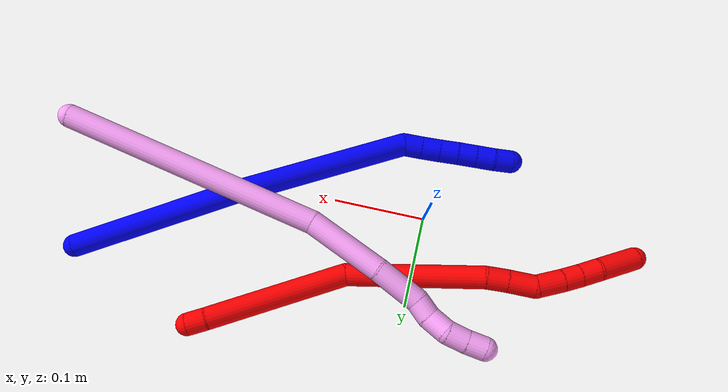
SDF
<sdf version="1.7">
 <world name="default">
  <model name="1">
   <static>0</static>
   <link name="1">
    <collision name="collision-cylinder-e_1_1_4">
     <pose>-0.08236 -0.040824 0.022036 1.07584 -1.05781 -0.67101</pose>
     <geometry><cylinder><radius>0.0125</radius><length>0.189054</length></cylinder></geometry>
     <surface>
      <friction><ode><mu>1.16</mu><mu2>1.16</mu2><slip1>0</slip1><slip2>0</slip2></ode></friction>
      <contact><ode><kp>1e+06</kp><kd>1</kd><max_vel>0</max_vel><min_depth>0.001</min_depth></ode></contact>
     </surface>
    </collision>
    <visual name="visual-cylinder-e_1_1_4">
     <pose>-0.08236 -0.040824 0.022036 1.07584 -1.05781 -0.67101</pose>
     <geometry><cylinder><radius>0.0125</radius><length>0.189054</length></cylinder></geometry>
     <material><ambient>0 0 1 1</ambient></material>
    </visual>
    <collision name="collision-cylinder-e_2_4_5">
     <pose>-0.246485 -0.130541 0.042995 1.5928 -1.03177 -1.05076</pose>
     <geometry><cylinder><radius>0.0125</radius><length>0.190548</length></cylinder></geometry>
     <surface>
      <friction><ode><mu>1.16</mu><mu2>1.16</mu2><slip1>0</slip1><slip2>0</slip2></ode></friction>
      <contact><ode><kp>1e+06</kp><kd>1</kd><max_vel>0</max_vel><min_depth>0.001</min_depth></ode></contact>
     </surface>
    </collision>
    <visual name="visual-cylinder-e_2_4_5">
     <pose>-0.246485 -0.130541 0.042995 1.5928 -1.03177 -1.05076</pose>
     <geometry><cylinder><radius>0.0125</radius><length>0.190548</length></cylinder></geometry>
     <material><ambient>0 0 1 1</ambient></material>
    </visual>
    <collision name="collision-cylinder-e_3_5_6">
     <pose>-0.338211 -0.179946 0.041197 2.52395 -1.48214 -2.47065</pose>
     <geometry><cylinder><radius>0.0125</radius><length>0.02</length></cylinder></geometry>
     <surface>
      <friction><ode><mu>1.16</mu><mu2>1.16</mu2><slip1>0</slip1><slip2>0</slip2></ode></friction>
      <contact><ode><kp>1e+06</kp><kd>1</kd><max_vel>0</max_vel><min_depth>0.001</min_depth></ode></contact>
     </surface>
    </collision>
    <visual name="visual-cylinder-e_3_5_6">
     <pose>-0.338211 -0.179946 0.041197 2.52395 -1.48214 -2.47065</pose>
     <geometry><cylinder><radius>0.0125</radius><length>0.02</length></cylinder></geometry>
     <material><ambient>0 0 1 1</ambient></material>
    </visual>
    <collision name="collision-cylinder-e_4_6_7">
     <pose>-0.358248 -0.181055 0.040085 2.15082 -1.50027 -2.09065</pose>
     <geometry><cylinder><radius>0.0125</radius><length>0.020202</length></cylinder></geometry>
     <surface>
      <friction><ode><mu>1.16</mu><mu2>1.16</mu2><slip1>0</slip1><slip2>0</slip2></ode></friction>
      <contact><ode><kp>1e+06</kp><kd>1</kd><max_vel>0</max_vel><min_depth>0.001</min_depth></ode></contact>
     </surface>
    </collision>
    <visual name="visual-cylinder-e_4_6_7">
     <pose>-0.358248 -0.181055 0.040085 2.15082 -1.50027 -2.09065</pose>
     <geometry><cylinder><radius>0.0125</radius><length>0.020202</length></cylinder></geometry>
     <material><ambient>0 0 1 1</ambient></material>
    </visual>
    <collision name="collision-cylinder-e_5_7_8">
     <pose>-0.378349 -0.182355 0.039443 1.91376 -1.49627 -1.84268</pose>
     <geometry><cylinder><radius>0.0125</radius><length>0.020106</length></cylinder></geometry>
     <surface>
      <friction><ode><mu>1.16</mu><mu2>1.16</mu2><slip1>0</slip1><slip2>0</slip2></ode></friction>
      <contact><ode><kp>1e+06</kp><kd>1</kd><max_vel>0</max_vel><min_depth>0.001</min_depth></ode></contact>
     </surface>
    </collision>
    <visual name="visual-cylinder-e_5_7_8">
     <pose>-0.378349 -0.182355 0.039443 1.91376 -1.49627 -1.84268</pose>
     <geometry><cylinder><radius>0.0125</radius><length>0.020106</length></cylinder></geometry>
     <material><ambient>0 0 1 1</ambient></material>
    </visual>
    <collision name="collision-cylinder-e_6_8_9">
     <pose>-0.398369 -0.183689 0.03863 2.29944 -1.48655 -2.23475</pose>
     <geometry><cylinder><radius>0.0125</radius><length>0.02006</length></cylinder></geometry>
     <surface>
      <friction><ode><mu>1.16</mu><mu2>1.16</mu2><slip1>0</slip1><slip2>0</slip2></ode></friction>
      <contact><ode><kp>1e+06</kp><kd>1</kd><max_vel>0</max_vel><min_depth>0.001</min_depth></ode></contact>
     </surface>
    </collision>
    <visual name="visual-cylinder-e_6_8_9">
     <pose>-0.398369 -0.183689 0.03863 2.29944 -1.48655 -2.23475</pose>
     <geometry><cylinder><radius>0.0125</radius><length>0.02006</length></cylinder></geometry>
     <material><ambient>0 0 1 1</ambient></material>
    </visual>
    <collision name="collision-cylinder-e_7_9_10">
     <pose>-0.418336 -0.184914 0.037489 2.34265 -1.48773 -2.28133</pose>
     <geometry><cylinder><radius>0.0125</radius><length>0.020014</length></cylinder></geometry>
     <surface>
      <friction><ode><mu>1.16</mu><mu2>1.16</mu2><slip1>0</slip1><slip2>0</slip2></ode></friction>
      <contact><ode><kp>1e+06</kp><kd>1</kd><max_vel>0</max_vel><min_depth>0.001</min_depth></ode></contact>
     </surface>
    </collision>
    <visual name="visual-cylinder-e_7_9_10">
     <pose>-0.418336 -0.184914 0.037489 2.34265 -1.48773 -2.28133</pose>
     <geometry><cylinder><radius>0.0125</radius><length>0.020014</length></cylinder></geometry>
     <material><ambient>0 0 1 1</ambient></material>
    </visual>
    <collision name="collision-cylinder-e_8_10_2">
     <pose>-0.438087 -0.187073 0.035467 2.31589 -1.35662 -2.14585</pose>
     <geometry><cylinder><radius>0.0125</radius><length>0.020015</length></cylinder></geometry>
     <surface>
      <friction><ode><mu>1.16</mu><mu2>1.16</mu2><slip1>0</slip1><slip2>0</slip2></ode></friction>
      <contact><ode><kp>1e+06</kp><kd>1</kd><max_vel>0</max_vel><min_depth>0.001</min_depth></ode></contact>
     </surface>
    </collision>
    <visual name="visual-cylinder-e_8_10_2">
     <pose>-0.438087 -0.187073 0.035467 2.31589 -1.35662 -2.14585</pose>
     <geometry><cylinder><radius>0.0125</radius><length>0.020015</length></cylinder></geometry>
     <material><ambient>0 0 1 1</ambient></material>
    </visual>
    <collision name="collision-sphere-2">
     <pose>-0.447866 -0.188636 0.034025 0 -0 0</pose>
     <geometry><sphere><radius>0.0125</radius></sphere></geometry>
     <surface>
      <friction><ode><mu>1.16</mu><mu2>1.16</mu2><slip1>0</slip1><slip2>0</slip2></ode></friction>
      <contact><ode><kp>1e+06</kp><kd>1</kd><max_vel>0</max_vel><min_depth>0.001</min_depth></ode></contact>
     </surface>
    </collision>
    <visual name="visual-sphere-2">
     <pose>-0.447866 -0.188636 0.034025 0 -0 0</pose>
     <geometry><sphere><radius>0.0125</radius></sphere></geometry>
     <material><ambient>0 0 1 1</ambient></material>
    </visual>
    <collision name="collision-sphere-10">
     <pose>-0.428308 -0.185509 0.03691 0 -0 0</pose>
     <geometry><sphere><radius>0.0125</radius></sphere></geometry>
     <surface>
      <friction><ode><mu>1.16</mu><mu2>1.16</mu2><slip1>0</slip1><slip2>0</slip2></ode></friction>
      <contact><ode><kp>1e+06</kp><kd>1</kd><max_vel>0</max_vel><min_depth>0.001</min_depth></ode></contact>
     </surface>
    </collision>
    <visual name="visual-sphere-10">
     <pose>-0.428308 -0.185509 0.03691 0 -0 0</pose>
     <geometry><sphere><radius>0.0125</radius></sphere></geometry>
     <material><ambient>0 0 1 1</ambient></material>
    </visual>
    <collision name="collision-sphere-9">
     <pose>-0.408363 -0.184319 0.038068 0 -0 0</pose>
     <geometry><sphere><radius>0.0125</radius></sphere></geometry>
     <surface>
      <friction><ode><mu>1.16</mu><mu2>1.16</mu2><slip1>0</slip1><slip2>0</slip2></ode></friction>
      <contact><ode><kp>1e+06</kp><kd>1</kd><max_vel>0</max_vel><min_depth>0.001</min_depth></ode></contact>
     </surface>
    </collision>
    <visual name="visual-sphere-9">
     <pose>-0.408363 -0.184319 0.038068 0 -0 0</pose>
     <geometry><sphere><radius>0.0125</radius></sphere></geometry>
     <material><ambient>0 0 1 1</ambient></material>
    </visual>
    <collision name="collision-sphere-4">
     <pose>-0.16472 -0.081649 0.044071 0 -0 0</pose>
     <geometry><sphere><radius>0.0125</radius></sphere></geometry>
     <surface>
      <friction><ode><mu>1.16</mu><mu2>1.16</mu2><slip1>0</slip1><slip2>0</slip2></ode></friction>
      <contact><ode><kp>1e+06</kp><kd>1</kd><max_vel>0</max_vel><min_depth>0.001</min_depth></ode></contact>
     </surface>
    </collision>
    <visual name="visual-sphere-4">
     <pose>-0.16472 -0.081649 0.044071 0 -0 0</pose>
     <geometry><sphere><radius>0.0125</radius></sphere></geometry>
     <material><ambient>0 0 1 1</ambient></material>
    </visual>
    <collision name="collision-sphere-1">
     <geometry><sphere><radius>0.0125</radius></sphere></geometry>
     <surface>
      <friction><ode><mu>1.16</mu><mu2>1.16</mu2><slip1>0</slip1><slip2>0</slip2></ode></friction>
      <contact><ode><kp>1e+06</kp><kd>1</kd><max_vel>0</max_vel><min_depth>0.001</min_depth></ode></contact>
     </surface>
    </collision>
    <visual name="visual-sphere-1">
     <geometry><sphere><radius>0.0125</radius></sphere></geometry>
     <material><ambient>0 0 1 1</ambient></material>
    </visual>
    <collision name="collision-sphere-8">
     <pose>-0.388375 -0.18306 0.039192 0 -0 0</pose>
     <geometry><sphere><radius>0.0125</radius></sphere></geometry>
     <surface>
      <friction><ode><mu>1.16</mu><mu2>1.16</mu2><slip1>0</slip1><slip2>0</slip2></ode></friction>
      <contact><ode><kp>1e+06</kp><kd>1</kd><max_vel>0</max_vel><min_depth>0.001</min_depth></ode></contact>
     </surface>
    </collision>
    <visual name="visual-sphere-8">
     <pose>-0.388375 -0.18306 0.039192 0 -0 0</pose>
     <geometry><sphere><radius>0.0125</radius></sphere></geometry>
     <material><ambient>0 0 1 1</ambient></material>
    </visual>
    <collision name="collision-sphere-5">
     <pose>-0.32825 -0.179434 0.041919 0 -0 0</pose>
     <geometry><sphere><radius>0.0125</radius></sphere></geometry>
     <surface>
      <friction><ode><mu>1.16</mu><mu2>1.16</mu2><slip1>0</slip1><slip2>0</slip2></ode></friction>
      <contact><ode><kp>1e+06</kp><kd>1</kd><max_vel>0</max_vel><min_depth>0.001</min_depth></ode></contact>
     </surface>
    </collision>
    <visual name="visual-sphere-5">
     <pose>-0.32825 -0.179434 0.041919 0 -0 0</pose>
     <geometry><sphere><radius>0.0125</radius></sphere></geometry>
     <material><ambient>0 0 1 1</ambient></material>
    </visual>
    <collision name="collision-sphere-6">
     <pose>-0.348172 -0.180459 0.040475 0 -0 0</pose>
     <geometry><sphere><radius>0.0125</radius></sphere></geometry>
     <surface>
      <friction><ode><mu>1.16</mu><mu2>1.16</mu2><slip1>0</slip1><slip2>0</slip2></ode></friction>
      <contact><ode><kp>1e+06</kp><kd>1</kd><max_vel>0</max_vel><min_depth>0.001</min_depth></ode></contact>
     </surface>
    </collision>
    <visual name="visual-sphere-6">
     <pose>-0.348172 -0.180459 0.040475 0 -0 0</pose>
     <geometry><sphere><radius>0.0125</radius></sphere></geometry>
     <material><ambient>0 0 1 1</ambient></material>
    </visual>
    <collision name="collision-sphere-7">
     <pose>-0.368324 -0.18165 0.039695 0 -0 0</pose>
     <geometry><sphere><radius>0.0125</radius></sphere></geometry>
     <surface>
      <friction><ode><mu>1.16</mu><mu2>1.16</mu2><slip1>0</slip1><slip2>0</slip2></ode></friction>
      <contact><ode><kp>1e+06</kp><kd>1</kd><max_vel>0</max_vel><min_depth>0.001</min_depth></ode></contact>
     </surface>
    </collision>
    <visual name="visual-sphere-7">
     <pose>-0.368324 -0.18165 0.039695 0 -0 0</pose>
     <geometry><sphere><radius>0.0125</radius></sphere></geometry>
     <material><ambient>0 0 1 1</ambient></material>
    </visual>
    <inertial>
     <pose>-0.218558 -0.109291 0.034041 0 -0 0</pose>
     <mass>0.5</mass>
     <inertia>
      <ixx>-0.000102</ixx>
      <ixy>0</ixy>
      <ixz>0</ixz>
      <iyy>0.000472</iyy>
      <iyz>0</iyz>
      <izz>0.001556</izz>
     </inertia>
    </inertial>
   </link>
   <pose>0.365273 0.112607 0.011497 0.26449 0.036742 0.008762</pose>
  </model>
  <model name="2">
   <static>0</static>
   <link name="2">
    <collision name="collision-cylinder-e_1_1_4">
     <pose>-0.009713 -0.004741 -0.000447 1.66475 -1.11497 -1.20112</pose>
     <geometry><cylinder><radius>0.0125</radius><length>0.021635</length></cylinder></geometry>
     <surface>
      <friction><ode><mu>1.16</mu><mu2>1.16</mu2><slip1>0</slip1><slip2>0</slip2></ode></friction>
      <contact><ode><kp>1e+06</kp><kd>1</kd><max_vel>0</max_vel><min_depth>0.001</min_depth></ode></contact>
     </surface>
    </collision>
    <visual name="visual-cylinder-e_1_1_4">
     <pose>-0.009713 -0.004741 -0.000447 1.66475 -1.11497 -1.20112</pose>
     <geometry><cylinder><radius>0.0125</radius><length>0.021635</length></cylinder></geometry>
     <material><ambient>1 0 0 1</ambient></material>
    </visual>
    <collision name="collision-cylinder-e_2_4_5">
     <pose>-0.086082 -0.048306 -0.012602 1.86369 -1.02425 -1.29553</pose>
     <geometry><cylinder><radius>0.0125</radius><length>0.156045</length></cylinder></geometry>
     <surface>
      <friction><ode><mu>1.16</mu><mu2>1.16</mu2><slip1>0</slip1><slip2>0</slip2></ode></friction>
      <contact><ode><kp>1e+06</kp><kd>1</kd><max_vel>0</max_vel><min_depth>0.001</min_depth></ode></contact>
     </surface>
    </collision>
    <visual name="visual-cylinder-e_2_4_5">
     <pose>-0.086082 -0.048306 -0.012602 1.86369 -1.02425 -1.29553</pose>
     <geometry><cylinder><radius>0.0125</radius><length>0.156045</length></cylinder></geometry>
     <material><ambient>1 0 0 1</ambient></material>
    </visual>
    <collision name="collision-cylinder-e_3_5_6">
     <pose>-0.226538 -0.09763 -0.031081 2.14354 -1.4031 -1.99581</pose>
     <geometry><cylinder><radius>0.0125</radius><length>0.149699</length></cylinder></geometry>
     <surface>
      <friction><ode><mu>1.16</mu><mu2>1.16</mu2><slip1>0</slip1><slip2>0</slip2></ode></friction>
      <contact><ode><kp>1e+06</kp><kd>1</kd><max_vel>0</max_vel><min_depth>0.001</min_depth></ode></contact>
     </surface>
    </collision>
    <visual name="visual-cylinder-e_3_5_6">
     <pose>-0.226538 -0.09763 -0.031081 2.14354 -1.4031 -1.99581</pose>
     <geometry><cylinder><radius>0.0125</radius><length>0.149699</length></cylinder></geometry>
     <material><ambient>1 0 0 1</ambient></material>
    </visual>
    <collision name="collision-cylinder-e_4_6_7">
     <pose>-0.311511 -0.108681 -0.040679 2.94893 -1.31842 -2.89345</pose>
     <geometry><cylinder><radius>0.0125</radius><length>0.023079</length></cylinder></geometry>
     <surface>
      <friction><ode><mu>1.16</mu><mu2>1.16</mu2><slip1>0</slip1><slip2>0</slip2></ode></friction>
      <contact><ode><kp>1e+06</kp><kd>1</kd><max_vel>0</max_vel><min_depth>0.001</min_depth></ode></contact>
     </surface>
    </collision>
    <visual name="visual-cylinder-e_4_6_7">
     <pose>-0.311511 -0.108681 -0.040679 2.94893 -1.31842 -2.89345</pose>
     <geometry><cylinder><radius>0.0125</radius><length>0.023079</length></cylinder></geometry>
     <material><ambient>1 0 0 1</ambient></material>
    </visual>
    <collision name="collision-cylinder-e_5_7_8">
     <pose>-0.337176 -0.109286 -0.047207 3.1273 -1.32084 -3.12319</pose>
     <geometry><cylinder><radius>0.0125</radius><length>0.029911</length></cylinder></geometry>
     <surface>
      <friction><ode><mu>1.16</mu><mu2>1.16</mu2><slip1>0</slip1><slip2>0</slip2></ode></friction>
      <contact><ode><kp>1e+06</kp><kd>1</kd><max_vel>0</max_vel><min_depth>0.001</min_depth></ode></contact>
     </surface>
    </collision>
    <visual name="visual-cylinder-e_5_7_8">
     <pose>-0.337176 -0.109286 -0.047207 3.1273 -1.32084 -3.12319</pose>
     <geometry><cylinder><radius>0.0125</radius><length>0.029911</length></cylinder></geometry>
     <material><ambient>1 0 0 1</ambient></material>
    </visual>
    <collision name="collision-cylinder-e_6_8_9">
     <pose>-0.364691 -0.115896 -0.054297 2.04808 -1.05512 -1.52715</pose>
     <geometry><cylinder><radius>0.0125</radius><length>0.02994</length></cylinder></geometry>
     <surface>
      <friction><ode><mu>1.16</mu><mu2>1.16</mu2><slip1>0</slip1><slip2>0</slip2></ode></friction>
      <contact><ode><kp>1e+06</kp><kd>1</kd><max_vel>0</max_vel><min_depth>0.001</min_depth></ode></contact>
     </surface>
    </collision>
    <visual name="visual-cylinder-e_6_8_9">
     <pose>-0.364691 -0.115896 -0.054297 2.04808 -1.05512 -1.52715</pose>
     <geometry><cylinder><radius>0.0125</radius><length>0.02994</length></cylinder></geometry>
     <material><ambient>1 0 0 1</ambient></material>
    </visual>
    <collision name="collision-cylinder-e_7_9_10">
     <pose>-0.386388 -0.127222 -0.059774 1.98311 -1.03029 -1.4269</pose>
     <geometry><cylinder><radius>0.0125</radius><length>0.020233</length></cylinder></geometry>
     <surface>
      <friction><ode><mu>1.16</mu><mu2>1.16</mu2><slip1>0</slip1><slip2>0</slip2></ode></friction>
      <contact><ode><kp>1e+06</kp><kd>1</kd><max_vel>0</max_vel><min_depth>0.001</min_depth></ode></contact>
     </surface>
    </collision>
    <visual name="visual-cylinder-e_7_9_10">
     <pose>-0.386388 -0.127222 -0.059774 1.98311 -1.03029 -1.4269</pose>
     <geometry><cylinder><radius>0.0125</radius><length>0.020233</length></cylinder></geometry>
     <material><ambient>1 0 0 1</ambient></material>
    </visual>
    <collision name="collision-cylinder-e_8_10_11">
     <pose>-0.404475 -0.13743 -0.063784 1.91091 -1.02091 -1.33985</pose>
     <geometry><cylinder><radius>0.0125</radius><length>0.022078</length></cylinder></geometry>
     <surface>
      <friction><ode><mu>1.16</mu><mu2>1.16</mu2><slip1>0</slip1><slip2>0</slip2></ode></friction>
      <contact><ode><kp>1e+06</kp><kd>1</kd><max_vel>0</max_vel><min_depth>0.001</min_depth></ode></contact>
     </surface>
    </collision>
    <visual name="visual-cylinder-e_8_10_11">
     <pose>-0.404475 -0.13743 -0.063784 1.91091 -1.02091 -1.33985</pose>
     <geometry><cylinder><radius>0.0125</radius><length>0.022078</length></cylinder></geometry>
     <material><ambient>1 0 0 1</ambient></material>
    </visual>
    <collision name="collision-cylinder-e_9_11_2">
     <pose>-0.432081 -0.155357 -0.074324 2.17466 -0.875757 -1.45648</pose>
     <geometry><cylinder><radius>0.0125</radius><length>0.04738</length></cylinder></geometry>
     <surface>
      <friction><ode><mu>1.16</mu><mu2>1.16</mu2><slip1>0</slip1><slip2>0</slip2></ode></friction>
      <contact><ode><kp>1e+06</kp><kd>1</kd><max_vel>0</max_vel><min_depth>0.001</min_depth></ode></contact>
     </surface>
    </collision>
    <visual name="visual-cylinder-e_9_11_2">
     <pose>-0.432081 -0.155357 -0.074324 2.17466 -0.875757 -1.45648</pose>
     <geometry><cylinder><radius>0.0125</radius><length>0.04738</length></cylinder></geometry>
     <material><ambient>1 0 0 1</ambient></material>
    </visual>
    <collision name="collision-sphere-2">
     <pose>-0.450275 -0.167845 -0.082938 0 -0 0</pose>
     <geometry><sphere><radius>0.0125</radius></sphere></geometry>
     <surface>
      <friction><ode><mu>1.16</mu><mu2>1.16</mu2><slip1>0</slip1><slip2>0</slip2></ode></friction>
      <contact><ode><kp>1e+06</kp><kd>1</kd><max_vel>0</max_vel><min_depth>0.001</min_depth></ode></contact>
     </surface>
    </collision>
    <visual name="visual-sphere-2">
     <pose>-0.450275 -0.167845 -0.082938 0 -0 0</pose>
     <geometry><sphere><radius>0.0125</radius></sphere></geometry>
     <material><ambient>1 0 0 1</ambient></material>
    </visual>
    <collision name="collision-sphere-11">
     <pose>-0.413886 -0.142868 -0.065709 0 -0 0</pose>
     <geometry><sphere><radius>0.0125</radius></sphere></geometry>
     <surface>
      <friction><ode><mu>1.16</mu><mu2>1.16</mu2><slip1>0</slip1><slip2>0</slip2></ode></friction>
      <contact><ode><kp>1e+06</kp><kd>1</kd><max_vel>0</max_vel><min_depth>0.001</min_depth></ode></contact>
     </surface>
    </collision>
    <visual name="visual-sphere-11">
     <pose>-0.413886 -0.142868 -0.065709 0 -0 0</pose>
     <geometry><sphere><radius>0.0125</radius></sphere></geometry>
     <material><ambient>1 0 0 1</ambient></material>
    </visual>
    <collision name="collision-sphere-10">
     <pose>-0.395063 -0.131991 -0.06186 0 -0 0</pose>
     <geometry><sphere><radius>0.0125</radius></sphere></geometry>
     <surface>
      <friction><ode><mu>1.16</mu><mu2>1.16</mu2><slip1>0</slip1><slip2>0</slip2></ode></friction>
      <contact><ode><kp>1e+06</kp><kd>1</kd><max_vel>0</max_vel><min_depth>0.001</min_depth></ode></contact>
     </surface>
    </collision>
    <visual name="visual-sphere-10">
     <pose>-0.395063 -0.131991 -0.06186 0 -0 0</pose>
     <geometry><sphere><radius>0.0125</radius></sphere></geometry>
     <material><ambient>1 0 0 1</ambient></material>
    </visual>
    <collision name="collision-sphere-9">
     <pose>-0.377714 -0.122453 -0.057688 0 -0 0</pose>
     <geometry><sphere><radius>0.0125</radius></sphere></geometry>
     <surface>
      <friction><ode><mu>1.16</mu><mu2>1.16</mu2><slip1>0</slip1><slip2>0</slip2></ode></friction>
      <contact><ode><kp>1e+06</kp><kd>1</kd><max_vel>0</max_vel><min_depth>0.001</min_depth></ode></contact>
     </surface>
    </collision>
    <visual name="visual-sphere-9">
     <pose>-0.377714 -0.122453 -0.057688 0 -0 0</pose>
     <geometry><sphere><radius>0.0125</radius></sphere></geometry>
     <material><ambient>1 0 0 1</ambient></material>
    </visual>
    <collision name="collision-sphere-4">
     <pose>-0.019426 -0.009482 -0.000894 0 -0 0</pose>
     <geometry><sphere><radius>0.0125</radius></sphere></geometry>
     <surface>
      <friction><ode><mu>1.16</mu><mu2>1.16</mu2><slip1>0</slip1><slip2>0</slip2></ode></friction>
      <contact><ode><kp>1e+06</kp><kd>1</kd><max_vel>0</max_vel><min_depth>0.001</min_depth></ode></contact>
     </surface>
    </collision>
    <visual name="visual-sphere-4">
     <pose>-0.019426 -0.009482 -0.000894 0 -0 0</pose>
     <geometry><sphere><radius>0.0125</radius></sphere></geometry>
     <material><ambient>1 0 0 1</ambient></material>
    </visual>
    <collision name="collision-sphere-1">
     <geometry><sphere><radius>0.0125</radius></sphere></geometry>
     <surface>
      <friction><ode><mu>1.16</mu><mu2>1.16</mu2><slip1>0</slip1><slip2>0</slip2></ode></friction>
      <contact><ode><kp>1e+06</kp><kd>1</kd><max_vel>0</max_vel><min_depth>0.001</min_depth></ode></contact>
     </surface>
    </collision>
    <visual name="visual-sphere-1">
     <geometry><sphere><radius>0.0125</radius></sphere></geometry>
     <material><ambient>1 0 0 1</ambient></material>
    </visual>
    <collision name="collision-sphere-8">
     <pose>-0.351667 -0.109339 -0.050906 0 -0 0</pose>
     <geometry><sphere><radius>0.0125</radius></sphere></geometry>
     <surface>
      <friction><ode><mu>1.16</mu><mu2>1.16</mu2><slip1>0</slip1><slip2>0</slip2></ode></friction>
      <contact><ode><kp>1e+06</kp><kd>1</kd><max_vel>0</max_vel><min_depth>0.001</min_depth></ode></contact>
     </surface>
    </collision>
    <visual name="visual-sphere-8">
     <pose>-0.351667 -0.109339 -0.050906 0 -0 0</pose>
     <geometry><sphere><radius>0.0125</radius></sphere></geometry>
     <material><ambient>1 0 0 1</ambient></material>
    </visual>
    <collision name="collision-sphere-5">
     <pose>-0.152738 -0.087131 -0.02431 0 -0 0</pose>
     <geometry><sphere><radius>0.0125</radius></sphere></geometry>
     <surface>
      <friction><ode><mu>1.16</mu><mu2>1.16</mu2><slip1>0</slip1><slip2>0</slip2></ode></friction>
      <contact><ode><kp>1e+06</kp><kd>1</kd><max_vel>0</max_vel><min_depth>0.001</min_depth></ode></contact>
     </surface>
    </collision>
    <visual name="visual-sphere-5">
     <pose>-0.152738 -0.087131 -0.02431 0 -0 0</pose>
     <geometry><sphere><radius>0.0125</radius></sphere></geometry>
     <material><ambient>1 0 0 1</ambient></material>
    </visual>
    <collision name="collision-sphere-6">
     <pose>-0.300338 -0.108129 -0.037851 0 -0 0</pose>
     <geometry><sphere><radius>0.0125</radius></sphere></geometry>
     <surface>
      <friction><ode><mu>1.16</mu><mu2>1.16</mu2><slip1>0</slip1><slip2>0</slip2></ode></friction>
      <contact><ode><kp>1e+06</kp><kd>1</kd><max_vel>0</max_vel><min_depth>0.001</min_depth></ode></contact>
     </surface>
    </collision>
    <visual name="visual-sphere-6">
     <pose>-0.300338 -0.108129 -0.037851 0 -0 0</pose>
     <geometry><sphere><radius>0.0125</radius></sphere></geometry>
     <material><ambient>1 0 0 1</ambient></material>
    </visual>
    <collision name="collision-sphere-7">
     <pose>-0.322685 -0.109233 -0.043507 0 -0 0</pose>
     <geometry><sphere><radius>0.0125</radius></sphere></geometry>
     <surface>
      <friction><ode><mu>1.16</mu><mu2>1.16</mu2><slip1>0</slip1><slip2>0</slip2></ode></friction>
      <contact><ode><kp>1e+06</kp><kd>1</kd><max_vel>0</max_vel><min_depth>0.001</min_depth></ode></contact>
     </surface>
    </collision>
    <visual name="visual-sphere-7">
     <pose>-0.322685 -0.109233 -0.043507 0 -0 0</pose>
     <geometry><sphere><radius>0.0125</radius></sphere></geometry>
     <material><ambient>1 0 0 1</ambient></material>
    </visual>
    <inertial>
     <pose>-0.225937 -0.088943 -0.033489 0 -0 0</pose>
     <mass>0.5</mass>
     <inertia>
      <ixx>-0.000225</ixx>
      <ixy>0</ixy>
      <ixz>0</ixz>
      <iyy>0.000297</iyy>
      <iyz>0</iyz>
      <izz>0.000781</izz>
     </inertia>
    </inertial>
   </link>
   <pose>0.223218 0.168714 0.017846 0.263502 0.255459 0.072366</pose>
  </model>
  <model name="4">
   <static>0</static>
   <link name="4">
    <collision name="collision-cylinder-e_1_1_4">
     <pose>-0.13087 0.04819 0.017667 -1.21939 -1.19704 0.889064</pose>
     <geometry><cylinder><radius>0.0125</radius><length>0.28115</length></cylinder></geometry>
     <surface>
      <friction><ode><mu>1.16</mu><mu2>1.16</mu2><slip1>0</slip1><slip2>0</slip2></ode></friction>
      <contact><ode><kp>1e+06</kp><kd>1</kd><max_vel>0</max_vel><min_depth>0.001</min_depth></ode></contact>
     </surface>
    </collision>
    <visual name="visual-cylinder-e_1_1_4">
     <pose>-0.13087 0.04819 0.017667 -1.21939 -1.19704 0.889064</pose>
     <geometry><cylinder><radius>0.0125</radius><length>0.28115</length></cylinder></geometry>
     <material><ambient>1 0.65098 0.996078 1</ambient></material>
    </visual>
    <collision name="collision-cylinder-e_2_4_5">
     <pose>-0.30213 0.10589 0.032926 -1.8189 -1.3325 1.5809</pose>
     <geometry><cylinder><radius>0.0125</radius><length>0.083129</length></cylinder></geometry>
     <surface>
      <friction><ode><mu>1.16</mu><mu2>1.16</mu2><slip1>0</slip1><slip2>0</slip2></ode></friction>
      <contact><ode><kp>1e+06</kp><kd>1</kd><max_vel>0</max_vel><min_depth>0.001</min_depth></ode></contact>
     </surface>
    </collision>
    <visual name="visual-cylinder-e_2_4_5">
     <pose>-0.30213 0.10589 0.032926 -1.8189 -1.3325 1.5809</pose>
     <geometry><cylinder><radius>0.0125</radius><length>0.083129</length></cylinder></geometry>
     <material><ambient>1 0.65098 0.996078 1</ambient></material>
    </visual>
    <collision name="collision-cylinder-e_3_5_6">
     <pose>-0.367354 0.118041 0.031172 -1.32722 -1.4617 1.22271</pose>
     <geometry><cylinder><radius>0.0125</radius><length>0.049965</length></cylinder></geometry>
     <surface>
      <friction><ode><mu>1.16</mu><mu2>1.16</mu2><slip1>0</slip1><slip2>0</slip2></ode></friction>
      <contact><ode><kp>1e+06</kp><kd>1</kd><max_vel>0</max_vel><min_depth>0.001</min_depth></ode></contact>
     </surface>
    </collision>
    <visual name="visual-cylinder-e_3_5_6">
     <pose>-0.367354 0.118041 0.031172 -1.32722 -1.4617 1.22271</pose>
     <geometry><cylinder><radius>0.0125</radius><length>0.049965</length></cylinder></geometry>
     <material><ambient>1 0.65098 0.996078 1</ambient></material>
    </visual>
    <collision name="collision-cylinder-e_4_6_7">
     <pose>-0.402101 0.119942 0.029686 2.80943 -1.34607 -2.7271</pose>
     <geometry><cylinder><radius>0.0125</radius><length>0.020337</length></cylinder></geometry>
     <surface>
      <friction><ode><mu>1.16</mu><mu2>1.16</mu2><slip1>0</slip1><slip2>0</slip2></ode></friction>
      <contact><ode><kp>1e+06</kp><kd>1</kd><max_vel>0</max_vel><min_depth>0.001</min_depth></ode></contact>
     </surface>
    </collision>
    <visual name="visual-cylinder-e_4_6_7">
     <pose>-0.402101 0.119942 0.029686 2.80943 -1.34607 -2.7271</pose>
     <geometry><cylinder><radius>0.0125</radius><length>0.020337</length></cylinder></geometry>
     <material><ambient>1 0.65098 0.996078 1</ambient></material>
    </visual>
    <collision name="collision-cylinder-e_5_7_8">
     <pose>-0.42303 0.121934 0.025383 -2.24012 -1.26459 1.97404</pose>
     <geometry><cylinder><radius>0.0125</radius><length>0.023108</length></cylinder></geometry>
     <surface>
      <friction><ode><mu>1.16</mu><mu2>1.16</mu2><slip1>0</slip1><slip2>0</slip2></ode></friction>
      <contact><ode><kp>1e+06</kp><kd>1</kd><max_vel>0</max_vel><min_depth>0.001</min_depth></ode></contact>
     </surface>
    </collision>
    <visual name="visual-cylinder-e_5_7_8">
     <pose>-0.42303 0.121934 0.025383 -2.24012 -1.26459 1.97404</pose>
     <geometry><cylinder><radius>0.0125</radius><length>0.023108</length></cylinder></geometry>
     <material><ambient>1 0.65098 0.996078 1</ambient></material>
    </visual>
    <collision name="collision-cylinder-e_6_8_9">
     <pose>-0.444371 0.127372 0.025093 -0.96593 -1.26231 0.731996</pose>
     <geometry><cylinder><radius>0.0125</radius><length>0.021671</length></cylinder></geometry>
     <surface>
      <friction><ode><mu>1.16</mu><mu2>1.16</mu2><slip1>0</slip1><slip2>0</slip2></ode></friction>
      <contact><ode><kp>1e+06</kp><kd>1</kd><max_vel>0</max_vel><min_depth>0.001</min_depth></ode></contact>
     </surface>
    </collision>
    <visual name="visual-cylinder-e_6_8_9">
     <pose>-0.444371 0.127372 0.025093 -0.96593 -1.26231 0.731996</pose>
     <geometry><cylinder><radius>0.0125</radius><length>0.021671</length></cylinder></geometry>
     <material><ambient>1 0.65098 0.996078 1</ambient></material>
    </visual>
    <collision name="collision-cylinder-e_7_9_2">
     <pose>-0.464185 0.133436 0.029237 -0.97573 -1.167 0.673925</pose>
     <geometry><cylinder><radius>0.0125</radius><length>0.02064</length></cylinder></geometry>
     <surface>
      <friction><ode><mu>1.16</mu><mu2>1.16</mu2><slip1>0</slip1><slip2>0</slip2></ode></friction>
      <contact><ode><kp>1e+06</kp><kd>1</kd><max_vel>0</max_vel><min_depth>0.001</min_depth></ode></contact>
     </surface>
    </collision>
    <visual name="visual-cylinder-e_7_9_2">
     <pose>-0.464185 0.133436 0.029237 -0.97573 -1.167 0.673925</pose>
     <geometry><cylinder><radius>0.0125</radius><length>0.02064</length></cylinder></geometry>
     <material><ambient>1 0.65098 0.996078 1</ambient></material>
    </visual>
    <collision name="collision-sphere-2">
     <pose>-0.473675 0.136794 0.03151 0 -0 0</pose>
     <geometry><sphere><radius>0.0125</radius></sphere></geometry>
     <surface>
      <friction><ode><mu>1.16</mu><mu2>1.16</mu2><slip1>0</slip1><slip2>0</slip2></ode></friction>
      <contact><ode><kp>1e+06</kp><kd>1</kd><max_vel>0</max_vel><min_depth>0.001</min_depth></ode></contact>
     </surface>
    </collision>
    <visual name="visual-sphere-2">
     <pose>-0.473675 0.136794 0.03151 0 -0 0</pose>
     <geometry><sphere><radius>0.0125</radius></sphere></geometry>
     <material><ambient>1 0.65098 0.996078 1</ambient></material>
    </visual>
    <collision name="collision-sphere-9">
     <pose>-0.454695 0.130078 0.026964 0 -0 0</pose>
     <geometry><sphere><radius>0.0125</radius></sphere></geometry>
     <surface>
      <friction><ode><mu>1.16</mu><mu2>1.16</mu2><slip1>0</slip1><slip2>0</slip2></ode></friction>
      <contact><ode><kp>1e+06</kp><kd>1</kd><max_vel>0</max_vel><min_depth>0.001</min_depth></ode></contact>
     </surface>
    </collision>
    <visual name="visual-sphere-9">
     <pose>-0.454695 0.130078 0.026964 0 -0 0</pose>
     <geometry><sphere><radius>0.0125</radius></sphere></geometry>
     <material><ambient>1 0.65098 0.996078 1</ambient></material>
    </visual>
    <collision name="collision-sphere-4">
     <pose>-0.26174 0.09638 0.035335 0 -0 0</pose>
     <geometry><sphere><radius>0.0125</radius></sphere></geometry>
     <surface>
      <friction><ode><mu>1.16</mu><mu2>1.16</mu2><slip1>0</slip1><slip2>0</slip2></ode></friction>
      <contact><ode><kp>1e+06</kp><kd>1</kd><max_vel>0</max_vel><min_depth>0.001</min_depth></ode></contact>
     </surface>
    </collision>
    <visual name="visual-sphere-4">
     <pose>-0.26174 0.09638 0.035335 0 -0 0</pose>
     <geometry><sphere><radius>0.0125</radius></sphere></geometry>
     <material><ambient>1 0.65098 0.996078 1</ambient></material>
    </visual>
    <collision name="collision-sphere-1">
     <geometry><sphere><radius>0.0125</radius></sphere></geometry>
     <surface>
      <friction><ode><mu>1.16</mu><mu2>1.16</mu2><slip1>0</slip1><slip2>0</slip2></ode></friction>
      <contact><ode><kp>1e+06</kp><kd>1</kd><max_vel>0</max_vel><min_depth>0.001</min_depth></ode></contact>
     </surface>
    </collision>
    <visual name="visual-sphere-1">
     <geometry><sphere><radius>0.0125</radius></sphere></geometry>
     <material><ambient>1 0.65098 0.996078 1</ambient></material>
    </visual>
    <collision name="collision-sphere-8">
     <pose>-0.434046 0.124666 0.023222 0 -0 0</pose>
     <geometry><sphere><radius>0.0125</radius></sphere></geometry>
     <surface>
      <friction><ode><mu>1.16</mu><mu2>1.16</mu2><slip1>0</slip1><slip2>0</slip2></ode></friction>
      <contact><ode><kp>1e+06</kp><kd>1</kd><max_vel>0</max_vel><min_depth>0.001</min_depth></ode></contact>
     </surface>
    </collision>
    <visual name="visual-sphere-8">
     <pose>-0.434046 0.124666 0.023222 0 -0 0</pose>
     <geometry><sphere><radius>0.0125</radius></sphere></geometry>
     <material><ambient>1 0.65098 0.996078 1</ambient></material>
    </visual>
    <collision name="collision-sphere-5">
     <pose>-0.34252 0.115401 0.030516 0 -0 0</pose>
     <geometry><sphere><radius>0.0125</radius></sphere></geometry>
     <surface>
      <friction><ode><mu>1.16</mu><mu2>1.16</mu2><slip1>0</slip1><slip2>0</slip2></ode></friction>
      <contact><ode><kp>1e+06</kp><kd>1</kd><max_vel>0</max_vel><min_depth>0.001</min_depth></ode></contact>
     </surface>
    </collision>
    <visual name="visual-sphere-5">
     <pose>-0.34252 0.115401 0.030516 0 -0 0</pose>
     <geometry><sphere><radius>0.0125</radius></sphere></geometry>
     <material><ambient>1 0.65098 0.996078 1</ambient></material>
    </visual>
    <collision name="collision-sphere-6">
     <pose>-0.392188 0.120681 0.031828 0 -0 0</pose>
     <geometry><sphere><radius>0.0125</radius></sphere></geometry>
     <surface>
      <friction><ode><mu>1.16</mu><mu2>1.16</mu2><slip1>0</slip1><slip2>0</slip2></ode></friction>
      <contact><ode><kp>1e+06</kp><kd>1</kd><max_vel>0</max_vel><min_depth>0.001</min_depth></ode></contact>
     </surface>
    </collision>
    <visual name="visual-sphere-6">
     <pose>-0.392188 0.120681 0.031828 0 -0 0</pose>
     <geometry><sphere><radius>0.0125</radius></sphere></geometry>
     <material><ambient>1 0.65098 0.996078 1</ambient></material>
    </visual>
    <collision name="collision-sphere-7">
     <pose>-0.412013 0.119203 0.027544 0 -0 0</pose>
     <geometry><sphere><radius>0.0125</radius></sphere></geometry>
     <surface>
      <friction><ode><mu>1.16</mu><mu2>1.16</mu2><slip1>0</slip1><slip2>0</slip2></ode></friction>
      <contact><ode><kp>1e+06</kp><kd>1</kd><max_vel>0</max_vel><min_depth>0.001</min_depth></ode></contact>
     </surface>
    </collision>
    <visual name="visual-sphere-7">
     <pose>-0.412013 0.119203 0.027544 0 -0 0</pose>
     <geometry><sphere><radius>0.0125</radius></sphere></geometry>
     <material><ambient>1 0.65098 0.996078 1</ambient></material>
    </visual>
    <inertial>
     <pose>-0.234857 0.078041 0.023199 0 -0 0</pose>
     <mass>0.5</mass>
     <inertia>
      <ixx>0.000935</ixx>
      <ixy>0</ixy>
      <ixz>0</ixz>
      <iyy>0.002289</iyy>
      <iyz>0</iyz>
      <izz>0.001152</izz>
     </inertia>
    </inertial>
   </link>
   <pose>0.388514 -0.016619 0.060998 2.38194 -0.143204 -0.541617</pose>
  </model>
 </world>
</sdf>
